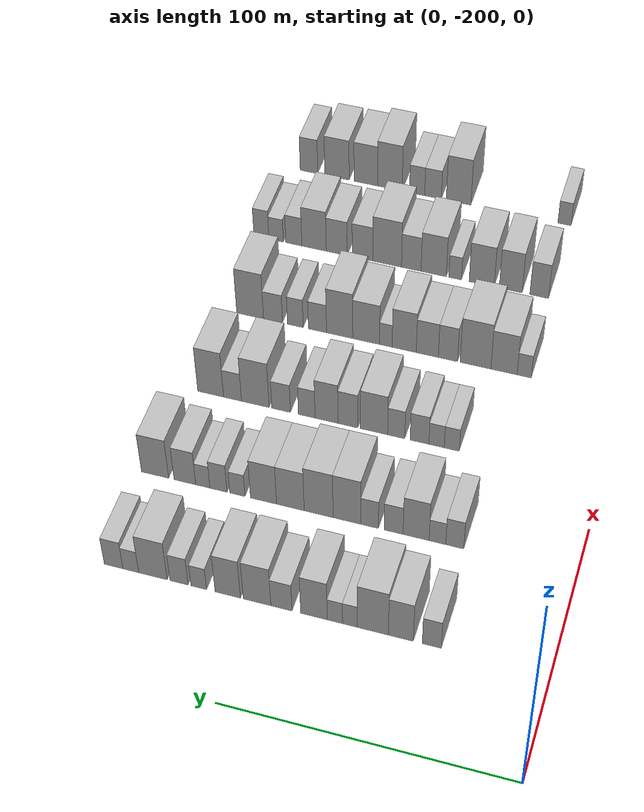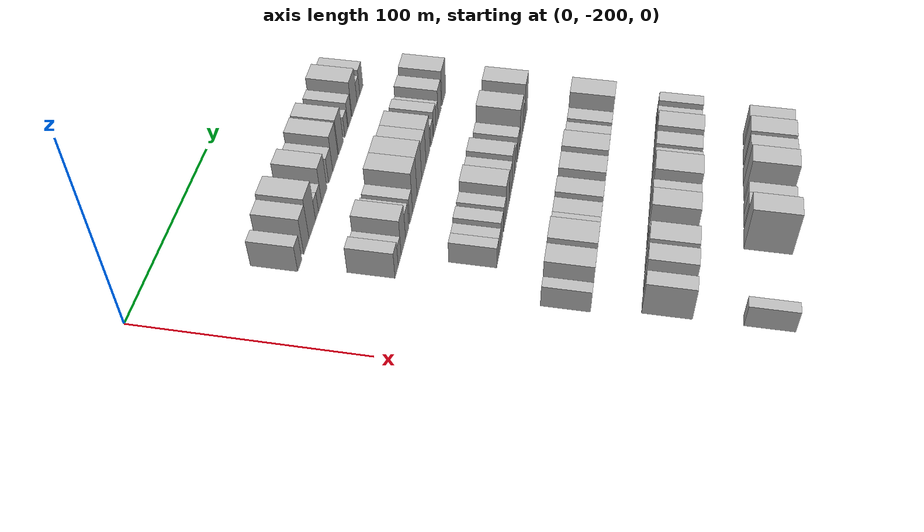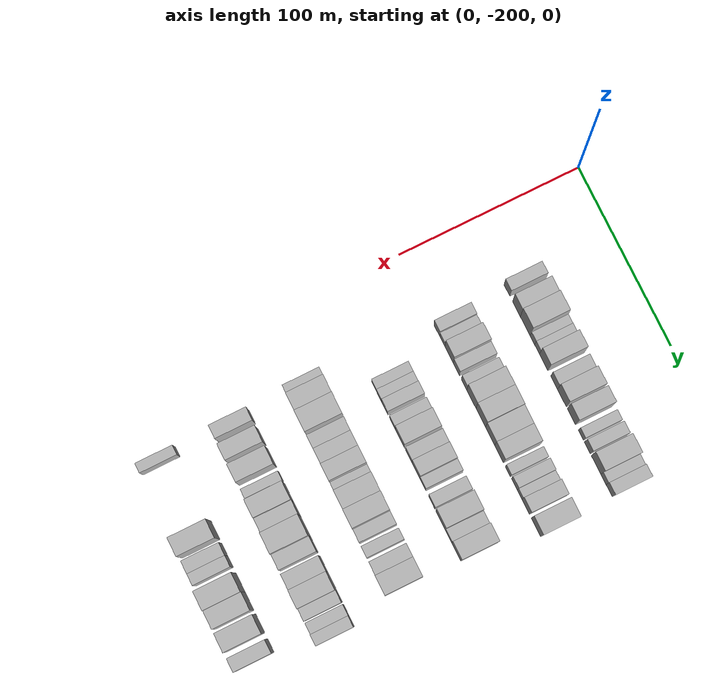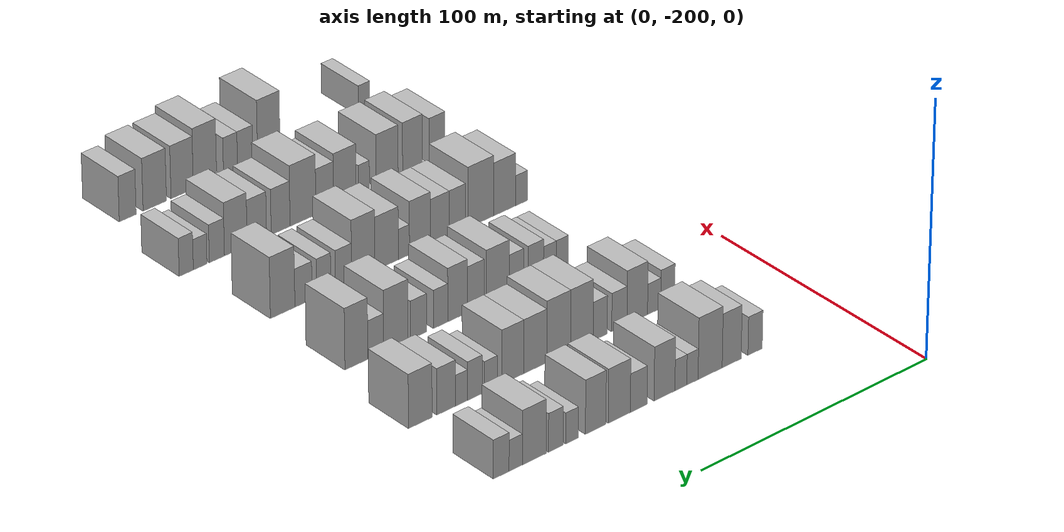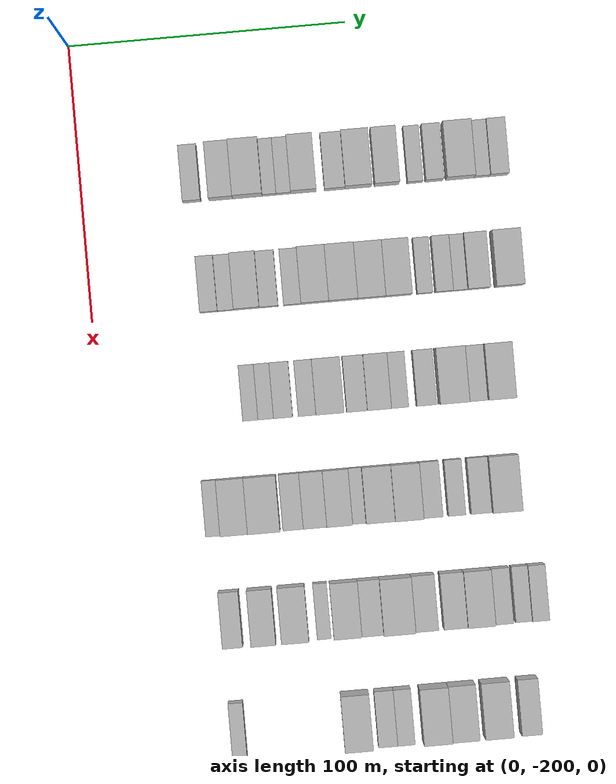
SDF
<sdf version="1.6">
 <world name="default">
  <model name="building_55">
   <static>1</static>
   <pose>50.0000 -160.3393 0 0.000000 0.000000 0.000000</pose>
   <link name="link">
    <pose>0 0 7.50 0 0 0</pose>
    <collision name="collision"><geometry><box><size>20.0000 6.4173 15.0000</size></box></geometry></collision>
    <visual name="visual">
     <cast_shadows>0</cast_shadows>
     <geometry><box><size>20.0000 6.4173 15.0000</size></box></geometry>
     <material>
      <script>
       <uri>model://HANNAS_wall/materials/scripts</uri>
       <uri>model://HANNAS_wall/materials/textures</uri>
       <name>vrc/HANNAS_wall</name>
      </script>
     </material>
    </visual>
   </link>
  </model>
  <model name="building_56">
   <static>1</static>
   <pose>50.0000 -149.9127 0 0.000000 0.000000 0.000000</pose>
   <link name="link">
    <pose>0 0 10.50 0 0 0</pose>
    <collision name="collision"><geometry><box><size>20.0000 8.4359 21.0000</size></box></geometry></collision>
    <visual name="visual">
     <cast_shadows>0</cast_shadows>
     <geometry><box><size>20.0000 8.4359 21.0000</size></box></geometry>
     <material>
      <script>
       <uri>model://HANNAS_wall/materials/scripts</uri>
       <uri>model://HANNAS_wall/materials/textures</uri>
       <name>vrc/HANNAS_wall</name>
      </script>
     </material>
    </visual>
   </link>
  </model>
  <model name="building_57">
   <static>1</static>
   <pose>50.0000 -140.3689 0 0.000000 0.000000 0.000000</pose>
   <link name="link">
    <pose>0 0 12.00 0 0 0</pose>
    <collision name="collision"><geometry><box><size>20.0000 10.6517 24.0000</size></box></geometry></collision>
    <visual name="visual">
     <cast_shadows>0</cast_shadows>
     <geometry><box><size>20.0000 10.6517 24.0000</size></box></geometry>
     <material>
      <script>
       <uri>model://HANNAS_wall/materials/scripts</uri>
       <uri>model://HANNAS_wall/materials/textures</uri>
       <name>vrc/HANNAS_wall</name>
      </script>
     </material>
    </visual>
   </link>
  </model>
  <model name="building_58">
   <static>1</static>
   <pose>50.0000 -132.5484 0 0.000000 0.000000 0.000000</pose>
   <link name="link">
    <pose>0 0 6.00 0 0 0</pose>
    <collision name="collision"><geometry><box><size>20.0000 4.9895 12.0000</size></box></geometry></collision>
    <visual name="visual">
     <cast_shadows>0</cast_shadows>
     <geometry><box><size>20.0000 4.9895 12.0000</size></box></geometry>
     <material>
      <script>
       <uri>model://HANNAS_wall/materials/scripts</uri>
       <uri>model://HANNAS_wall/materials/textures</uri>
       <name>vrc/HANNAS_wall</name>
      </script>
     </material>
    </visual>
   </link>
  </model>
  <model name="building_59">
   <static>1</static>
   <pose>50.0000 -127.4445 0 0.000000 0.000000 0.000000</pose>
   <link name="link">
    <pose>0 0 6.00 0 0 0</pose>
    <collision name="collision"><geometry><box><size>20.0000 5.2183 12.0000</size></box></geometry></collision>
    <visual name="visual">
     <cast_shadows>0</cast_shadows>
     <geometry><box><size>20.0000 5.2183 12.0000</size></box></geometry>
     <material>
      <script>
       <uri>model://HANNAS_wall/materials/scripts</uri>
       <uri>model://HANNAS_wall/materials/textures</uri>
       <name>vrc/HANNAS_wall</name>
      </script>
     </material>
    </visual>
   </link>
  </model>
  <model name="building_60">
   <static>1</static>
   <pose>50.0000 -120.2556 0 0.000000 0.000000 0.000000</pose>
   <link name="link">
    <pose>0 0 10.50 0 0 0</pose>
    <collision name="collision"><geometry><box><size>20.0000 9.1595 21.0000</size></box></geometry></collision>
    <visual name="visual">
     <cast_shadows>0</cast_shadows>
     <geometry><box><size>20.0000 9.1595 21.0000</size></box></geometry>
     <material>
      <script>
       <uri>model://HANNAS_wall/materials/scripts</uri>
       <uri>model://HANNAS_wall/materials/textures</uri>
       <name>vrc/HANNAS_wall</name>
      </script>
     </material>
    </visual>
   </link>
  </model>
  <model name="building_61">
   <static>1</static>
   <pose>50.0000 -109.0073 0 0.000000 0.000000 0.000000</pose>
   <link name="link">
    <pose>0 0 7.50 0 0 0</pose>
    <collision name="collision"><geometry><box><size>20.0000 7.3371 15.0000</size></box></geometry></collision>
    <visual name="visual">
     <cast_shadows>0</cast_shadows>
     <geometry><box><size>20.0000 7.3371 15.0000</size></box></geometry>
     <material>
      <script>
       <uri>model://HANNAS_wall/materials/scripts</uri>
       <uri>model://HANNAS_wall/materials/textures</uri>
       <name>vrc/HANNAS_wall</name>
      </script>
     </material>
    </visual>
   </link>
  </model>
  <model name="building_62">
   <static>1</static>
   <pose>50.0000 -100.5350 0 0.000000 0.000000 0.000000</pose>
   <link name="link">
    <pose>0 0 10.50 0 0 0</pose>
    <collision name="collision"><geometry><box><size>20.0000 9.6074 21.0000</size></box></geometry></collision>
    <visual name="visual">
     <cast_shadows>0</cast_shadows>
     <geometry><box><size>20.0000 9.6074 21.0000</size></box></geometry>
     <material>
      <script>
       <uri>model://HANNAS_wall/materials/scripts</uri>
       <uri>model://HANNAS_wall/materials/textures</uri>
       <name>vrc/HANNAS_wall</name>
      </script>
     </material>
    </visual>
   </link>
  </model>
  <model name="building_63">
   <static>1</static>
   <pose>50.0000 -90.2976 0 0.000000 0.000000 0.000000</pose>
   <link name="link">
    <pose>0 0 10.50 0 0 0</pose>
    <collision name="collision"><geometry><box><size>20.0000 8.8675 21.0000</size></box></geometry></collision>
    <visual name="visual">
     <cast_shadows>0</cast_shadows>
     <geometry><box><size>20.0000 8.8675 21.0000</size></box></geometry>
     <material>
      <script>
       <uri>model://HANNAS_wall/materials/scripts</uri>
       <uri>model://HANNAS_wall/materials/textures</uri>
       <name>vrc/HANNAS_wall</name>
      </script>
     </material>
    </visual>
   </link>
  </model>
  <model name="building_64">
   <static>1</static>
   <pose>50.0000 -80.1124 0 0.000000 0.000000 0.000000</pose>
   <link name="link">
    <pose>0 0 6.00 0 0 0</pose>
    <collision name="collision"><geometry><box><size>20.0000 5.5029 12.0000</size></box></geometry></collision>
    <visual name="visual">
     <cast_shadows>0</cast_shadows>
     <geometry><box><size>20.0000 5.5029 12.0000</size></box></geometry>
     <material>
      <script>
       <uri>model://HANNAS_wall/materials/scripts</uri>
       <uri>model://HANNAS_wall/materials/textures</uri>
       <name>vrc/HANNAS_wall</name>
      </script>
     </material>
    </visual>
   </link>
  </model>
  <model name="building_65">
   <static>1</static>
   <pose>50.0000 -73.1707 0 0.000000 0.000000 0.000000</pose>
   <link name="link">
    <pose>0 0 7.50 0 0 0</pose>
    <collision name="collision"><geometry><box><size>20.0000 6.3804 15.0000</size></box></geometry></collision>
    <visual name="visual">
     <cast_shadows>0</cast_shadows>
     <geometry><box><size>20.0000 6.3804 15.0000</size></box></geometry>
     <material>
      <script>
       <uri>model://HANNAS_wall/materials/scripts</uri>
       <uri>model://HANNAS_wall/materials/textures</uri>
       <name>vrc/HANNAS_wall</name>
      </script>
     </material>
    </visual>
   </link>
  </model>
  <model name="building_66">
   <static>1</static>
   <pose>50.0000 -63.8979 0 0.000000 0.000000 0.000000</pose>
   <link name="link">
    <pose>0 0 10.50 0 0 0</pose>
    <collision name="collision"><geometry><box><size>20.0000 10.1652 21.0000</size></box></geometry></collision>
    <visual name="visual">
     <cast_shadows>0</cast_shadows>
     <geometry><box><size>20.0000 10.1652 21.0000</size></box></geometry>
     <material>
      <script>
       <uri>model://HANNAS_wall/materials/scripts</uri>
       <uri>model://HANNAS_wall/materials/textures</uri>
       <name>vrc/HANNAS_wall</name>
      </script>
     </material>
    </visual>
   </link>
  </model>
  <model name="building_67">
   <static>1</static>
   <pose>50.0000 -55.9959 0 0.000000 0.000000 0.000000</pose>
   <link name="link">
    <pose>0 0 6.00 0 0 0</pose>
    <collision name="collision"><geometry><box><size>20.0000 5.6389 12.0000</size></box></geometry></collision>
    <visual name="visual">
     <cast_shadows>0</cast_shadows>
     <geometry><box><size>20.0000 5.6389 12.0000</size></box></geometry>
     <material>
      <script>
       <uri>model://HANNAS_wall/materials/scripts</uri>
       <uri>model://HANNAS_wall/materials/textures</uri>
       <name>vrc/HANNAS_wall</name>
      </script>
     </material>
    </visual>
   </link>
  </model>
  <model name="building_68">
   <static>1</static>
   <pose>50.0000 -49.8510 0 0.000000 0.000000 0.000000</pose>
   <link name="link">
    <pose>0 0 7.50 0 0 0</pose>
    <collision name="collision"><geometry><box><size>20.0000 6.6507 15.0000</size></box></geometry></collision>
    <visual name="visual">
     <cast_shadows>0</cast_shadows>
     <geometry><box><size>20.0000 6.6507 15.0000</size></box></geometry>
     <material>
      <script>
       <uri>model://HANNAS_wall/materials/scripts</uri>
       <uri>model://HANNAS_wall/materials/textures</uri>
       <name>vrc/HANNAS_wall</name>
      </script>
     </material>
    </visual>
   </link>
  </model>
  <model name="building_194">
   <static>1</static>
   <pose>90.0000 -157.6678 0 0.000000 0.000000 0.000000</pose>
   <link name="link">
    <pose>0 0 7.50 0 0 0</pose>
    <collision name="collision"><geometry><box><size>20.0000 6.2964 15.0000</size></box></geometry></collision>
    <visual name="visual">
     <cast_shadows>0</cast_shadows>
     <geometry><box><size>20.0000 6.2964 15.0000</size></box></geometry>
     <material>
      <script>
       <uri>model://HANNAS_wall/materials/scripts</uri>
       <uri>model://HANNAS_wall/materials/textures</uri>
       <name>vrc/HANNAS_wall</name>
      </script>
     </material>
    </visual>
   </link>
  </model>
  <model name="building_195">
   <static>1</static>
   <pose>90.0000 -151.5935 0 0.000000 0.000000 0.000000</pose>
   <link name="link">
    <pose>0 0 6.00 0 0 0</pose>
    <collision name="collision"><geometry><box><size>20.0000 5.8522 12.0000</size></box></geometry></collision>
    <visual name="visual">
     <cast_shadows>0</cast_shadows>
     <geometry><box><size>20.0000 5.8522 12.0000</size></box></geometry>
     <material>
      <script>
       <uri>model://HANNAS_wall/materials/scripts</uri>
       <uri>model://HANNAS_wall/materials/textures</uri>
       <name>vrc/HANNAS_wall</name>
      </script>
     </material>
    </visual>
   </link>
  </model>
  <model name="building_196">
   <static>1</static>
   <pose>90.0000 -144.0897 0 0.000000 0.000000 0.000000</pose>
   <link name="link">
    <pose>0 0 10.50 0 0 0</pose>
    <collision name="collision"><geometry><box><size>20.0000 9.1555 21.0000</size></box></geometry></collision>
    <visual name="visual">
     <cast_shadows>0</cast_shadows>
     <geometry><box><size>20.0000 9.1555 21.0000</size></box></geometry>
     <material>
      <script>
       <uri>model://HANNAS_wall/materials/scripts</uri>
       <uri>model://HANNAS_wall/materials/textures</uri>
       <name>vrc/HANNAS_wall</name>
      </script>
     </material>
    </visual>
   </link>
  </model>
  <model name="building_197">
   <static>1</static>
   <pose>90.0000 -136.1538 0 0.000000 0.000000 0.000000</pose>
   <link name="link">
    <pose>0 0 7.50 0 0 0</pose>
    <collision name="collision"><geometry><box><size>20.0000 6.7163 15.0000</size></box></geometry></collision>
    <visual name="visual">
     <cast_shadows>0</cast_shadows>
     <geometry><box><size>20.0000 6.7163 15.0000</size></box></geometry>
     <material>
      <script>
       <uri>model://HANNAS_wall/materials/scripts</uri>
       <uri>model://HANNAS_wall/materials/textures</uri>
       <name>vrc/HANNAS_wall</name>
      </script>
     </material>
    </visual>
   </link>
  </model>
  <model name="building_198">
   <static>1</static>
   <pose>90.0000 -127.6882 0 0.000000 0.000000 0.000000</pose>
   <link name="link">
    <pose>0 0 7.50 0 0 0</pose>
    <collision name="collision"><geometry><box><size>20.0000 6.2150 15.0000</size></box></geometry></collision>
    <visual name="visual">
     <cast_shadows>0</cast_shadows>
     <geometry><box><size>20.0000 6.2150 15.0000</size></box></geometry>
     <material>
      <script>
       <uri>model://HANNAS_wall/materials/scripts</uri>
       <uri>model://HANNAS_wall/materials/textures</uri>
       <name>vrc/HANNAS_wall</name>
      </script>
     </material>
    </visual>
   </link>
  </model>
  <model name="building_199">
   <static>1</static>
   <pose>90.0000 -119.6330 0 0.000000 0.000000 0.000000</pose>
   <link name="link">
    <pose>0 0 12.00 0 0 0</pose>
    <collision name="collision"><geometry><box><size>20.0000 9.8953 24.0000</size></box></geometry></collision>
    <visual name="visual">
     <cast_shadows>0</cast_shadows>
     <geometry><box><size>20.0000 9.8953 24.0000</size></box></geometry>
     <material>
      <script>
       <uri>model://HANNAS_wall/materials/scripts</uri>
       <uri>model://HANNAS_wall/materials/textures</uri>
       <name>vrc/HANNAS_wall</name>
      </script>
     </material>
    </visual>
   </link>
  </model>
  <model name="building_200">
   <static>1</static>
   <pose>90.0000 -109.4890 0 0.000000 0.000000 0.000000</pose>
   <link name="link">
    <pose>0 0 12.00 0 0 0</pose>
    <collision name="collision"><geometry><box><size>20.0000 10.3929 24.0000</size></box></geometry></collision>
    <visual name="visual">
     <cast_shadows>0</cast_shadows>
     <geometry><box><size>20.0000 10.3929 24.0000</size></box></geometry>
     <material>
      <script>
       <uri>model://HANNAS_wall/materials/scripts</uri>
       <uri>model://HANNAS_wall/materials/textures</uri>
       <name>vrc/HANNAS_wall</name>
      </script>
     </material>
    </visual>
   </link>
  </model>
  <model name="building_201">
   <static>1</static>
   <pose>90.0000 -99.2939 0 0.000000 0.000000 0.000000</pose>
   <link name="link">
    <pose>0 0 10.50 0 0 0</pose>
    <collision name="collision"><geometry><box><size>20.0000 9.9974 21.0000</size></box></geometry></collision>
    <visual name="visual">
     <cast_shadows>0</cast_shadows>
     <geometry><box><size>20.0000 9.9974 21.0000</size></box></geometry>
     <material>
      <script>
       <uri>model://HANNAS_wall/materials/scripts</uri>
       <uri>model://HANNAS_wall/materials/textures</uri>
       <name>vrc/HANNAS_wall</name>
      </script>
     </material>
    </visual>
   </link>
  </model>
  <model name="building_202">
   <static>1</static>
   <pose>90.0000 -89.5693 0 0.000000 0.000000 0.000000</pose>
   <link name="link">
    <pose>0 0 10.50 0 0 0</pose>
    <collision name="collision"><geometry><box><size>20.0000 9.4518 21.0000</size></box></geometry></collision>
    <visual name="visual">
     <cast_shadows>0</cast_shadows>
     <geometry><box><size>20.0000 9.4518 21.0000</size></box></geometry>
     <material>
      <script>
       <uri>model://HANNAS_wall/materials/scripts</uri>
       <uri>model://HANNAS_wall/materials/textures</uri>
       <name>vrc/HANNAS_wall</name>
      </script>
     </material>
    </visual>
   </link>
  </model>
  <model name="building_203">
   <static>1</static>
   <pose>90.0000 -80.0685 0 0.000000 0.000000 0.000000</pose>
   <link name="link">
    <pose>0 0 6.00 0 0 0</pose>
    <collision name="collision"><geometry><box><size>20.0000 5.5498 12.0000</size></box></geometry></collision>
    <visual name="visual">
     <cast_shadows>0</cast_shadows>
     <geometry><box><size>20.0000 5.5498 12.0000</size></box></geometry>
     <material>
      <script>
       <uri>model://HANNAS_wall/materials/scripts</uri>
       <uri>model://HANNAS_wall/materials/textures</uri>
       <name>vrc/HANNAS_wall</name>
      </script>
     </material>
    </visual>
   </link>
  </model>
  <model name="building_204">
   <static>1</static>
   <pose>90.0000 -73.1542 0 0.000000 0.000000 0.000000</pose>
   <link name="link">
    <pose>0 0 7.50 0 0 0</pose>
    <collision name="collision"><geometry><box><size>20.0000 6.2788 15.0000</size></box></geometry></collision>
    <visual name="visual">
     <cast_shadows>0</cast_shadows>
     <geometry><box><size>20.0000 6.2788 15.0000</size></box></geometry>
     <material>
      <script>
       <uri>model://HANNAS_wall/materials/scripts</uri>
       <uri>model://HANNAS_wall/materials/textures</uri>
       <name>vrc/HANNAS_wall</name>
      </script>
     </material>
    </visual>
   </link>
  </model>
  <model name="building_205">
   <static>1</static>
   <pose>90.0000 -67.4105 0 0.000000 0.000000 0.000000</pose>
   <link name="link">
    <pose>0 0 6.00 0 0 0</pose>
    <collision name="collision"><geometry><box><size>20.0000 5.2084 12.0000</size></box></geometry></collision>
    <visual name="visual">
     <cast_shadows>0</cast_shadows>
     <geometry><box><size>20.0000 5.2084 12.0000</size></box></geometry>
     <material>
      <script>
       <uri>model://HANNAS_wall/materials/scripts</uri>
       <uri>model://HANNAS_wall/materials/textures</uri>
       <name>vrc/HANNAS_wall</name>
      </script>
     </material>
    </visual>
   </link>
  </model>
  <model name="building_206">
   <static>1</static>
   <pose>90.0000 -60.8112 0 0.000000 0.000000 0.000000</pose>
   <link name="link">
    <pose>0 0 9.00 0 0 0</pose>
    <collision name="collision"><geometry><box><size>20.0000 7.9901 18.0000</size></box></geometry></collision>
    <visual name="visual">
     <cast_shadows>0</cast_shadows>
     <geometry><box><size>20.0000 7.9901 18.0000</size></box></geometry>
     <material>
      <script>
       <uri>model://HANNAS_wall/materials/scripts</uri>
       <uri>model://HANNAS_wall/materials/textures</uri>
       <name>vrc/HANNAS_wall</name>
      </script>
     </material>
    </visual>
   </link>
  </model>
  <model name="building_207">
   <static>1</static>
   <pose>90.0000 -49.7831 0 0.000000 0.000000 0.000000</pose>
   <link name="link">
    <pose>0 0 10.50 0 0 0</pose>
    <collision name="collision"><geometry><box><size>20.0000 10.0661 21.0000</size></box></geometry></collision>
    <visual name="visual">
     <cast_shadows>0</cast_shadows>
     <geometry><box><size>20.0000 10.0661 21.0000</size></box></geometry>
     <material>
      <script>
       <uri>model://HANNAS_wall/materials/scripts</uri>
       <uri>model://HANNAS_wall/materials/textures</uri>
       <name>vrc/HANNAS_wall</name>
      </script>
     </material>
    </visual>
   </link>
  </model>
  <model name="building_328">
   <static>1</static>
   <pose>130.0000 -146.1766 0 0.000000 0.000000 0.000000</pose>
   <link name="link">
    <pose>0 0 6.00 0 0 0</pose>
    <collision name="collision"><geometry><box><size>20.0000 5.4695 12.0000</size></box></geometry></collision>
    <visual name="visual">
     <cast_shadows>0</cast_shadows>
     <geometry><box><size>20.0000 5.4695 12.0000</size></box></geometry>
     <material>
      <script>
       <uri>model://HANNAS_wall/materials/scripts</uri>
       <uri>model://HANNAS_wall/materials/textures</uri>
       <name>vrc/HANNAS_wall</name>
      </script>
     </material>
    </visual>
   </link>
  </model>
  <model name="building_329">
   <static>1</static>
   <pose>130.0000 -140.6397 0 0.000000 0.000000 0.000000</pose>
   <link name="link">
    <pose>0 0 6.00 0 0 0</pose>
    <collision name="collision"><geometry><box><size>20.0000 5.6043 12.0000</size></box></geometry></collision>
    <visual name="visual">
     <cast_shadows>0</cast_shadows>
     <geometry><box><size>20.0000 5.6043 12.0000</size></box></geometry>
     <material>
      <script>
       <uri>model://HANNAS_wall/materials/scripts</uri>
       <uri>model://HANNAS_wall/materials/textures</uri>
       <name>vrc/HANNAS_wall</name>
      </script>
     </material>
    </visual>
   </link>
  </model>
  <model name="building_330">
   <static>1</static>
   <pose>130.0000 -134.4156 0 0.000000 0.000000 0.000000</pose>
   <link name="link">
    <pose>0 0 7.50 0 0 0</pose>
    <collision name="collision"><geometry><box><size>20.0000 6.8438 15.0000</size></box></geometry></collision>
    <visual name="visual">
     <cast_shadows>0</cast_shadows>
     <geometry><box><size>20.0000 6.8438 15.0000</size></box></geometry>
     <material>
      <script>
       <uri>model://HANNAS_wall/materials/scripts</uri>
       <uri>model://HANNAS_wall/materials/textures</uri>
       <name>vrc/HANNAS_wall</name>
      </script>
     </material>
    </visual>
   </link>
  </model>
  <model name="building_331">
   <static>1</static>
   <pose>130.0000 -125.8391 0 0.000000 0.000000 0.000000</pose>
   <link name="link">
    <pose>0 0 7.50 0 0 0</pose>
    <collision name="collision"><geometry><box><size>20.0000 6.3091 15.0000</size></box></geometry></collision>
    <visual name="visual">
     <cast_shadows>0</cast_shadows>
     <geometry><box><size>20.0000 6.3091 15.0000</size></box></geometry>
     <material>
      <script>
       <uri>model://HANNAS_wall/materials/scripts</uri>
       <uri>model://HANNAS_wall/materials/textures</uri>
       <name>vrc/HANNAS_wall</name>
      </script>
     </material>
    </visual>
   </link>
  </model>
  <model name="building_332">
   <static>1</static>
   <pose>130.0000 -117.6732 0 0.000000 0.000000 0.000000</pose>
   <link name="link">
    <pose>0 0 10.50 0 0 0</pose>
    <collision name="collision"><geometry><box><size>20.0000 10.0227 21.0000</size></box></geometry></collision>
    <visual name="visual">
     <cast_shadows>0</cast_shadows>
     <geometry><box><size>20.0000 10.0227 21.0000</size></box></geometry>
     <material>
      <script>
       <uri>model://HANNAS_wall/materials/scripts</uri>
       <uri>model://HANNAS_wall/materials/textures</uri>
       <name>vrc/HANNAS_wall</name>
      </script>
     </material>
    </visual>
   </link>
  </model>
  <model name="building_333">
   <static>1</static>
   <pose>130.0000 -108.0036 0 0.000000 0.000000 0.000000</pose>
   <link name="link">
    <pose>0 0 9.00 0 0 0</pose>
    <collision name="collision"><geometry><box><size>20.0000 7.3164 18.0000</size></box></geometry></collision>
    <visual name="visual">
     <cast_shadows>0</cast_shadows>
     <geometry><box><size>20.0000 7.3164 18.0000</size></box></geometry>
     <material>
      <script>
       <uri>model://HANNAS_wall/materials/scripts</uri>
       <uri>model://HANNAS_wall/materials/textures</uri>
       <name>vrc/HANNAS_wall</name>
      </script>
     </material>
    </visual>
   </link>
  </model>
  <model name="building_334">
   <static>1</static>
   <pose>130.0000 -100.0509 0 0.000000 0.000000 0.000000</pose>
   <link name="link">
    <pose>0 0 10.50 0 0 0</pose>
    <collision name="collision"><geometry><box><size>20.0000 8.5891 21.0000</size></box></geometry></collision>
    <visual name="visual">
     <cast_shadows>0</cast_shadows>
     <geometry><box><size>20.0000 8.5891 21.0000</size></box></geometry>
     <material>
      <script>
       <uri>model://HANNAS_wall/materials/scripts</uri>
       <uri>model://HANNAS_wall/materials/textures</uri>
       <name>vrc/HANNAS_wall</name>
      </script>
     </material>
    </visual>
   </link>
  </model>
  <model name="building_335">
   <static>1</static>
   <pose>130.0000 -92.6324 0 0.000000 0.000000 0.000000</pose>
   <link name="link">
    <pose>0 0 7.50 0 0 0</pose>
    <collision name="collision"><geometry><box><size>20.0000 6.2480 15.0000</size></box></geometry></collision>
    <visual name="visual">
     <cast_shadows>0</cast_shadows>
     <geometry><box><size>20.0000 6.2480 15.0000</size></box></geometry>
     <material>
      <script>
       <uri>model://HANNAS_wall/materials/scripts</uri>
       <uri>model://HANNAS_wall/materials/textures</uri>
       <name>vrc/HANNAS_wall</name>
      </script>
     </material>
    </visual>
   </link>
  </model>
  <model name="building_336">
   <static>1</static>
   <pose>130.0000 -83.0033 0 0.000000 0.000000 0.000000</pose>
   <link name="link">
    <pose>0 0 7.50 0 0 0</pose>
    <collision name="collision"><geometry><box><size>20.0000 7.0102 15.0000</size></box></geometry></collision>
    <visual name="visual">
     <cast_shadows>0</cast_shadows>
     <geometry><box><size>20.0000 7.0102 15.0000</size></box></geometry>
     <material>
      <script>
       <uri>model://HANNAS_wall/materials/scripts</uri>
       <uri>model://HANNAS_wall/materials/textures</uri>
       <name>vrc/HANNAS_wall</name>
      </script>
     </material>
    </visual>
   </link>
  </model>
  <model name="building_337">
   <static>1</static>
   <pose>130.0000 -73.2473 0 0.000000 0.000000 0.000000</pose>
   <link name="link">
    <pose>0 0 12.00 0 0 0</pose>
    <collision name="collision"><geometry><box><size>20.0000 10.5017 24.0000</size></box></geometry></collision>
    <visual name="visual">
     <cast_shadows>0</cast_shadows>
     <geometry><box><size>20.0000 10.5017 24.0000</size></box></geometry>
     <material>
      <script>
       <uri>model://HANNAS_wall/materials/scripts</uri>
       <uri>model://HANNAS_wall/materials/textures</uri>
       <name>vrc/HANNAS_wall</name>
      </script>
     </material>
    </visual>
   </link>
  </model>
  <model name="building_338">
   <static>1</static>
   <pose>130.0000 -64.5908 0 0.000000 0.000000 0.000000</pose>
   <link name="link">
    <pose>0 0 7.50 0 0 0</pose>
    <collision name="collision"><geometry><box><size>20.0000 6.8115 15.0000</size></box></geometry></collision>
    <visual name="visual">
     <cast_shadows>0</cast_shadows>
     <geometry><box><size>20.0000 6.8115 15.0000</size></box></geometry>
     <material>
      <script>
       <uri>model://HANNAS_wall/materials/scripts</uri>
       <uri>model://HANNAS_wall/materials/textures</uri>
       <name>vrc/HANNAS_wall</name>
      </script>
     </material>
    </visual>
   </link>
  </model>
  <model name="building_339">
   <static>1</static>
   <pose>130.0000 -56.2738 0 0.000000 0.000000 0.000000</pose>
   <link name="link">
    <pose>0 0 12.00 0 0 0</pose>
    <collision name="collision"><geometry><box><size>20.0000 9.8225 24.0000</size></box></geometry></collision>
    <visual name="visual">
     <cast_shadows>0</cast_shadows>
     <geometry><box><size>20.0000 9.8225 24.0000</size></box></geometry>
     <material>
      <script>
       <uri>model://HANNAS_wall/materials/scripts</uri>
       <uri>model://HANNAS_wall/materials/textures</uri>
       <name>vrc/HANNAS_wall</name>
      </script>
     </material>
    </visual>
   </link>
  </model>
  <model name="building_459">
   <static>1</static>
   <pose>170.0000 -162.9685 0 0.000000 0.000000 0.000000</pose>
   <link name="link">
    <pose>0 0 6.00 0 0 0</pose>
    <collision name="collision"><geometry><box><size>20.0000 5.3256 12.0000</size></box></geometry></collision>
    <visual name="visual">
     <cast_shadows>0</cast_shadows>
     <geometry><box><size>20.0000 5.3256 12.0000</size></box></geometry>
     <material>
      <script>
       <uri>model://HANNAS_wall/materials/scripts</uri>
       <uri>model://HANNAS_wall/materials/textures</uri>
       <name>vrc/HANNAS_wall</name>
      </script>
     </material>
    </visual>
   </link>
  </model>
  <model name="building_460">
   <static>1</static>
   <pose>170.0000 -155.3904 0 0.000000 0.000000 0.000000</pose>
   <link name="link">
    <pose>0 0 10.50 0 0 0</pose>
    <collision name="collision"><geometry><box><size>20.0000 9.8306 21.0000</size></box></geometry></collision>
    <visual name="visual">
     <cast_shadows>0</cast_shadows>
     <geometry><box><size>20.0000 9.8306 21.0000</size></box></geometry>
     <material>
      <script>
       <uri>model://HANNAS_wall/materials/scripts</uri>
       <uri>model://HANNAS_wall/materials/textures</uri>
       <name>vrc/HANNAS_wall</name>
      </script>
     </material>
    </visual>
   </link>
  </model>
  <model name="building_461">
   <static>1</static>
   <pose>170.0000 -144.6985 0 0.000000 0.000000 0.000000</pose>
   <link name="link">
    <pose>0 0 12.00 0 0 0</pose>
    <collision name="collision"><geometry><box><size>20.0000 11.5532 24.0000</size></box></geometry></collision>
    <visual name="visual">
     <cast_shadows>0</cast_shadows>
     <geometry><box><size>20.0000 11.5532 24.0000</size></box></geometry>
     <material>
      <script>
       <uri>model://HANNAS_wall/materials/scripts</uri>
       <uri>model://HANNAS_wall/materials/textures</uri>
       <name>vrc/HANNAS_wall</name>
      </script>
     </material>
    </visual>
   </link>
  </model>
  <model name="building_462">
   <static>1</static>
   <pose>170.0000 -134.2907 0 0.000000 0.000000 0.000000</pose>
   <link name="link">
    <pose>0 0 9.00 0 0 0</pose>
    <collision name="collision"><geometry><box><size>20.0000 7.2623 18.0000</size></box></geometry></collision>
    <visual name="visual">
     <cast_shadows>0</cast_shadows>
     <geometry><box><size>20.0000 7.2623 18.0000</size></box></geometry>
     <material>
      <script>
       <uri>model://HANNAS_wall/materials/scripts</uri>
       <uri>model://HANNAS_wall/materials/textures</uri>
       <name>vrc/HANNAS_wall</name>
      </script>
     </material>
    </visual>
   </link>
  </model>
  <model name="building_463">
   <static>1</static>
   <pose>170.0000 -126.4711 0 0.000000 0.000000 0.000000</pose>
   <link name="link">
    <pose>0 0 9.00 0 0 0</pose>
    <collision name="collision"><geometry><box><size>20.0000 8.3770 18.0000</size></box></geometry></collision>
    <visual name="visual">
     <cast_shadows>0</cast_shadows>
     <geometry><box><size>20.0000 8.3770 18.0000</size></box></geometry>
     <material>
      <script>
       <uri>model://HANNAS_wall/materials/scripts</uri>
       <uri>model://HANNAS_wall/materials/textures</uri>
       <name>vrc/HANNAS_wall</name>
      </script>
     </material>
    </visual>
   </link>
  </model>
  <model name="building_464">
   <static>1</static>
   <pose>170.0000 -117.6715 0 0.000000 0.000000 0.000000</pose>
   <link name="link">
    <pose>0 0 10.50 0 0 0</pose>
    <collision name="collision"><geometry><box><size>20.0000 9.2223 21.0000</size></box></geometry></collision>
    <visual name="visual">
     <cast_shadows>0</cast_shadows>
     <geometry><box><size>20.0000 9.2223 21.0000</size></box></geometry>
     <material>
      <script>
       <uri>model://HANNAS_wall/materials/scripts</uri>
       <uri>model://HANNAS_wall/materials/textures</uri>
       <name>vrc/HANNAS_wall</name>
      </script>
     </material>
    </visual>
   </link>
  </model>
  <model name="building_465">
   <static>1</static>
   <pose>170.0000 -110.6391 0 0.000000 0.000000 0.000000</pose>
   <link name="link">
    <pose>0 0 6.00 0 0 0</pose>
    <collision name="collision"><geometry><box><size>20.0000 4.8424 12.0000</size></box></geometry></collision>
    <visual name="visual">
     <cast_shadows>0</cast_shadows>
     <geometry><box><size>20.0000 4.8424 12.0000</size></box></geometry>
     <material>
      <script>
       <uri>model://HANNAS_wall/materials/scripts</uri>
       <uri>model://HANNAS_wall/materials/textures</uri>
       <name>vrc/HANNAS_wall</name>
      </script>
     </material>
    </visual>
   </link>
  </model>
  <model name="building_466">
   <static>1</static>
   <pose>170.0000 -103.0587 0 0.000000 0.000000 0.000000</pose>
   <link name="link">
    <pose>0 0 10.50 0 0 0</pose>
    <collision name="collision"><geometry><box><size>20.0000 10.3184 21.0000</size></box></geometry></collision>
    <visual name="visual">
     <cast_shadows>0</cast_shadows>
     <geometry><box><size>20.0000 10.3184 21.0000</size></box></geometry>
     <material>
      <script>
       <uri>model://HANNAS_wall/materials/scripts</uri>
       <uri>model://HANNAS_wall/materials/textures</uri>
       <name>vrc/HANNAS_wall</name>
      </script>
     </material>
    </visual>
   </link>
  </model>
  <model name="building_467">
   <static>1</static>
   <pose>170.0000 -92.8172 0 0.000000 0.000000 0.000000</pose>
   <link name="link">
    <pose>0 0 12.00 0 0 0</pose>
    <collision name="collision"><geometry><box><size>20.0000 10.1645 24.0000</size></box></geometry></collision>
    <visual name="visual">
     <cast_shadows>0</cast_shadows>
     <geometry><box><size>20.0000 10.1645 24.0000</size></box></geometry>
     <material>
      <script>
       <uri>model://HANNAS_wall/materials/scripts</uri>
       <uri>model://HANNAS_wall/materials/textures</uri>
       <name>vrc/HANNAS_wall</name>
      </script>
     </material>
    </visual>
   </link>
  </model>
  <model name="building_468">
   <static>1</static>
   <pose>170.0000 -84.2109 0 0.000000 0.000000 0.000000</pose>
   <link name="link">
    <pose>0 0 7.50 0 0 0</pose>
    <collision name="collision"><geometry><box><size>20.0000 7.0480 15.0000</size></box></geometry></collision>
    <visual name="visual">
     <cast_shadows>0</cast_shadows>
     <geometry><box><size>20.0000 7.0480 15.0000</size></box></geometry>
     <material>
      <script>
       <uri>model://HANNAS_wall/materials/scripts</uri>
       <uri>model://HANNAS_wall/materials/textures</uri>
       <name>vrc/HANNAS_wall</name>
      </script>
     </material>
    </visual>
   </link>
  </model>
  <model name="building_469">
   <static>1</static>
   <pose>170.0000 -75.6225 0 0.000000 0.000000 0.000000</pose>
   <link name="link">
    <pose>0 0 7.50 0 0 0</pose>
    <collision name="collision"><geometry><box><size>20.0000 6.1286 15.0000</size></box></geometry></collision>
    <visual name="visual">
     <cast_shadows>0</cast_shadows>
     <geometry><box><size>20.0000 6.1286 15.0000</size></box></geometry>
     <material>
      <script>
       <uri>model://HANNAS_wall/materials/scripts</uri>
       <uri>model://HANNAS_wall/materials/textures</uri>
       <name>vrc/HANNAS_wall</name>
      </script>
     </material>
    </visual>
   </link>
  </model>
  <model name="building_470">
   <static>1</static>
   <pose>170.0000 -66.8559 0 0.000000 0.000000 0.000000</pose>
   <link name="link">
    <pose>0 0 7.50 0 0 0</pose>
    <collision name="collision"><geometry><box><size>20.0000 7.4047 15.0000</size></box></geometry></collision>
    <visual name="visual">
     <cast_shadows>0</cast_shadows>
     <geometry><box><size>20.0000 7.4047 15.0000</size></box></geometry>
     <material>
      <script>
       <uri>model://HANNAS_wall/materials/scripts</uri>
       <uri>model://HANNAS_wall/materials/textures</uri>
       <name>vrc/HANNAS_wall</name>
      </script>
     </material>
    </visual>
   </link>
  </model>
  <model name="building_471">
   <static>1</static>
   <pose>170.0000 -57.8774 0 0.000000 0.000000 0.000000</pose>
   <link name="link">
    <pose>0 0 12.00 0 0 0</pose>
    <collision name="collision"><geometry><box><size>20.0000 10.5522 24.0000</size></box></geometry></collision>
    <visual name="visual">
     <cast_shadows>0</cast_shadows>
     <geometry><box><size>20.0000 10.5522 24.0000</size></box></geometry>
     <material>
      <script>
       <uri>model://HANNAS_wall/materials/scripts</uri>
       <uri>model://HANNAS_wall/materials/textures</uri>
       <name>vrc/HANNAS_wall</name>
      </script>
     </material>
    </visual>
   </link>
  </model>
  <model name="building_602">
   <static>1</static>
   <pose>210.0000 -159.3896 0 0.000000 0.000000 0.000000</pose>
   <link name="link">
    <pose>0 0 9.00 0 0 0</pose>
    <collision name="collision"><geometry><box><size>20.0000 7.2347 18.0000</size></box></geometry></collision>
    <visual name="visual">
     <cast_shadows>0</cast_shadows>
     <geometry><box><size>20.0000 7.2347 18.0000</size></box></geometry>
     <material>
      <script>
       <uri>model://HANNAS_wall/materials/scripts</uri>
       <uri>model://HANNAS_wall/materials/textures</uri>
       <name>vrc/HANNAS_wall</name>
      </script>
     </material>
    </visual>
   </link>
  </model>
  <model name="building_603">
   <static>1</static>
   <pose>210.0000 -148.3409 0 0.000000 0.000000 0.000000</pose>
   <link name="link">
    <pose>0 0 10.50 0 0 0</pose>
    <collision name="collision"><geometry><box><size>20.0000 8.8627 21.0000</size></box></geometry></collision>
    <visual name="visual">
     <cast_shadows>0</cast_shadows>
     <geometry><box><size>20.0000 8.8627 21.0000</size></box></geometry>
     <material>
      <script>
       <uri>model://HANNAS_wall/materials/scripts</uri>
       <uri>model://HANNAS_wall/materials/textures</uri>
       <name>vrc/HANNAS_wall</name>
      </script>
     </material>
    </visual>
   </link>
  </model>
  <model name="building_604">
   <static>1</static>
   <pose>210.0000 -137.0191 0 0.000000 0.000000 0.000000</pose>
   <link name="link">
    <pose>0 0 10.50 0 0 0</pose>
    <collision name="collision"><geometry><box><size>20.0000 9.7810 21.0000</size></box></geometry></collision>
    <visual name="visual">
     <cast_shadows>0</cast_shadows>
     <geometry><box><size>20.0000 9.7810 21.0000</size></box></geometry>
     <material>
      <script>
       <uri>model://HANNAS_wall/materials/scripts</uri>
       <uri>model://HANNAS_wall/materials/textures</uri>
       <name>vrc/HANNAS_wall</name>
      </script>
     </material>
    </visual>
   </link>
  </model>
  <model name="building_605">
   <static>1</static>
   <pose>210.0000 -126.6483 0 0.000000 0.000000 0.000000</pose>
   <link name="link">
    <pose>0 0 6.00 0 0 0</pose>
    <collision name="collision"><geometry><box><size>20.0000 4.9606 12.0000</size></box></geometry></collision>
    <visual name="visual">
     <cast_shadows>0</cast_shadows>
     <geometry><box><size>20.0000 4.9606 12.0000</size></box></geometry>
     <material>
      <script>
       <uri>model://HANNAS_wall/materials/scripts</uri>
       <uri>model://HANNAS_wall/materials/textures</uri>
       <name>vrc/HANNAS_wall</name>
      </script>
     </material>
    </visual>
   </link>
  </model>
  <model name="building_606">
   <static>1</static>
   <pose>210.0000 -118.1913 0 0.000000 0.000000 0.000000</pose>
   <link name="link">
    <pose>0 0 10.50 0 0 0</pose>
    <collision name="collision"><geometry><box><size>20.0000 9.9532 21.0000</size></box></geometry></collision>
    <visual name="visual">
     <cast_shadows>0</cast_shadows>
     <geometry><box><size>20.0000 9.9532 21.0000</size></box></geometry>
     <material>
      <script>
       <uri>model://HANNAS_wall/materials/scripts</uri>
       <uri>model://HANNAS_wall/materials/textures</uri>
       <name>vrc/HANNAS_wall</name>
      </script>
     </material>
    </visual>
   </link>
  </model>
  <model name="building_607">
   <static>1</static>
   <pose>210.0000 -109.3292 0 0.000000 0.000000 0.000000</pose>
   <link name="link">
    <pose>0 0 9.00 0 0 0</pose>
    <collision name="collision"><geometry><box><size>20.0000 7.7711 18.0000</size></box></geometry></collision>
    <visual name="visual">
     <cast_shadows>0</cast_shadows>
     <geometry><box><size>20.0000 7.7711 18.0000</size></box></geometry>
     <material>
      <script>
       <uri>model://HANNAS_wall/materials/scripts</uri>
       <uri>model://HANNAS_wall/materials/textures</uri>
       <name>vrc/HANNAS_wall</name>
      </script>
     </material>
    </visual>
   </link>
  </model>
  <model name="building_608">
   <static>1</static>
   <pose>210.0000 -99.7610 0 0.000000 0.000000 0.000000</pose>
   <link name="link">
    <pose>0 0 12.00 0 0 0</pose>
    <collision name="collision"><geometry><box><size>20.0000 11.3653 24.0000</size></box></geometry></collision>
    <visual name="visual">
     <cast_shadows>0</cast_shadows>
     <geometry><box><size>20.0000 11.3653 24.0000</size></box></geometry>
     <material>
      <script>
       <uri>model://HANNAS_wall/materials/scripts</uri>
       <uri>model://HANNAS_wall/materials/textures</uri>
       <name>vrc/HANNAS_wall</name>
      </script>
     </material>
    </visual>
   </link>
  </model>
  <model name="building_609">
   <static>1</static>
   <pose>210.0000 -89.9478 0 0.000000 0.000000 0.000000</pose>
   <link name="link">
    <pose>0 0 9.00 0 0 0</pose>
    <collision name="collision"><geometry><box><size>20.0000 8.2610 18.0000</size></box></geometry></collision>
    <visual name="visual">
     <cast_shadows>0</cast_shadows>
     <geometry><box><size>20.0000 8.2610 18.0000</size></box></geometry>
     <material>
      <script>
       <uri>model://HANNAS_wall/materials/scripts</uri>
       <uri>model://HANNAS_wall/materials/textures</uri>
       <name>vrc/HANNAS_wall</name>
      </script>
     </material>
    </visual>
   </link>
  </model>
  <model name="building_610">
   <static>1</static>
   <pose>210.0000 -79.5942 0 0.000000 0.000000 0.000000</pose>
   <link name="link">
    <pose>0 0 9.00 0 0 0</pose>
    <collision name="collision"><geometry><box><size>20.0000 8.4462 18.0000</size></box></geometry></collision>
    <visual name="visual">
     <cast_shadows>0</cast_shadows>
     <geometry><box><size>20.0000 8.4462 18.0000</size></box></geometry>
     <material>
      <script>
       <uri>model://HANNAS_wall/materials/scripts</uri>
       <uri>model://HANNAS_wall/materials/textures</uri>
       <name>vrc/HANNAS_wall</name>
      </script>
     </material>
    </visual>
   </link>
  </model>
  <model name="building_611">
   <static>1</static>
   <pose>210.0000 -70.4447 0 0.000000 0.000000 0.000000</pose>
   <link name="link">
    <pose>0 0 10.50 0 0 0</pose>
    <collision name="collision"><geometry><box><size>20.0000 9.8528 21.0000</size></box></geometry></collision>
    <visual name="visual">
     <cast_shadows>0</cast_shadows>
     <geometry><box><size>20.0000 9.8528 21.0000</size></box></geometry>
     <material>
      <script>
       <uri>model://HANNAS_wall/materials/scripts</uri>
       <uri>model://HANNAS_wall/materials/textures</uri>
       <name>vrc/HANNAS_wall</name>
      </script>
     </material>
    </visual>
   </link>
  </model>
  <model name="building_612">
   <static>1</static>
   <pose>210.0000 -62.2493 0 0.000000 0.000000 0.000000</pose>
   <link name="link">
    <pose>0 0 7.50 0 0 0</pose>
    <collision name="collision"><geometry><box><size>20.0000 6.5382 15.0000</size></box></geometry></collision>
    <visual name="visual">
     <cast_shadows>0</cast_shadows>
     <geometry><box><size>20.0000 6.5382 15.0000</size></box></geometry>
     <material>
      <script>
       <uri>model://HANNAS_wall/materials/scripts</uri>
       <uri>model://HANNAS_wall/materials/textures</uri>
       <name>vrc/HANNAS_wall</name>
      </script>
     </material>
    </visual>
   </link>
  </model>
  <model name="building_613">
   <static>1</static>
   <pose>210.0000 -55.0412 0 0.000000 0.000000 0.000000</pose>
   <link name="link">
    <pose>0 0 6.00 0 0 0</pose>
    <collision name="collision"><geometry><box><size>20.0000 5.8779 12.0000</size></box></geometry></collision>
    <visual name="visual">
     <cast_shadows>0</cast_shadows>
     <geometry><box><size>20.0000 5.8779 12.0000</size></box></geometry>
     <material>
      <script>
       <uri>model://HANNAS_wall/materials/scripts</uri>
       <uri>model://HANNAS_wall/materials/textures</uri>
       <name>vrc/HANNAS_wall</name>
      </script>
     </material>
    </visual>
   </link>
  </model>
  <model name="building_614">
   <static>1</static>
   <pose>210.0000 -49.0611 0 0.000000 0.000000 0.000000</pose>
   <link name="link">
    <pose>0 0 7.50 0 0 0</pose>
    <collision name="collision"><geometry><box><size>20.0000 6.0822 15.0000</size></box></geometry></collision>
    <visual name="visual">
     <cast_shadows>0</cast_shadows>
     <geometry><box><size>20.0000 6.0822 15.0000</size></box></geometry>
     <material>
      <script>
       <uri>model://HANNAS_wall/materials/scripts</uri>
       <uri>model://HANNAS_wall/materials/textures</uri>
       <name>vrc/HANNAS_wall</name>
      </script>
     </material>
    </visual>
   </link>
  </model>
  <model name="building_736">
   <static>1</static>
   <pose>250.0000 -160.3291 0 0.000000 0.000000 0.000000</pose>
   <link name="link">
    <pose>0 0 6.00 0 0 0</pose>
    <collision name="collision"><geometry><box><size>20.0000 5.2443 12.0000</size></box></geometry></collision>
    <visual name="visual">
     <cast_shadows>0</cast_shadows>
     <geometry><box><size>20.0000 5.2443 12.0000</size></box></geometry>
     <material>
      <script>
       <uri>model://HANNAS_wall/materials/scripts</uri>
       <uri>model://HANNAS_wall/materials/textures</uri>
       <name>vrc/HANNAS_wall</name>
      </script>
     </material>
    </visual>
   </link>
  </model>
  <model name="building_737">
   <static>1</static>
   <pose>250.0000 -117.6622 0 0.000000 0.000000 0.000000</pose>
   <link name="link">
    <pose>0 0 12.00 0 0 0</pose>
    <collision name="collision"><geometry><box><size>20.0000 10.0298 24.0000</size></box></geometry></collision>
    <visual name="visual">
     <cast_shadows>0</cast_shadows>
     <geometry><box><size>20.0000 10.0298 24.0000</size></box></geometry>
     <material>
      <script>
       <uri>model://HANNAS_wall/materials/scripts</uri>
       <uri>model://HANNAS_wall/materials/textures</uri>
       <name>vrc/HANNAS_wall</name>
      </script>
     </material>
    </visual>
   </link>
  </model>
  <model name="building_738">
   <static>1</static>
   <pose>250.0000 -107.2268 0 0.000000 0.000000 0.000000</pose>
   <link name="link">
    <pose>0 0 7.50 0 0 0</pose>
    <collision name="collision"><geometry><box><size>20.0000 6.8411 15.0000</size></box></geometry></collision>
    <visual name="visual">
     <cast_shadows>0</cast_shadows>
     <geometry><box><size>20.0000 6.8411 15.0000</size></box></geometry>
     <material>
      <script>
       <uri>model://HANNAS_wall/materials/scripts</uri>
       <uri>model://HANNAS_wall/materials/textures</uri>
       <name>vrc/HANNAS_wall</name>
      </script>
     </material>
    </visual>
   </link>
  </model>
  <model name="building_739">
   <static>1</static>
   <pose>250.0000 -100.7081 0 0.000000 0.000000 0.000000</pose>
   <link name="link">
    <pose>0 0 7.50 0 0 0</pose>
    <collision name="collision"><geometry><box><size>20.0000 6.1963 15.0000</size></box></geometry></collision>
    <visual name="visual">
     <cast_shadows>0</cast_shadows>
     <geometry><box><size>20.0000 6.1963 15.0000</size></box></geometry>
     <material>
      <script>
       <uri>model://HANNAS_wall/materials/scripts</uri>
       <uri>model://HANNAS_wall/materials/textures</uri>
       <name>vrc/HANNAS_wall</name>
      </script>
     </material>
    </visual>
   </link>
  </model>
  <model name="building_740">
   <static>1</static>
   <pose>250.0000 -89.4993 0 0.000000 0.000000 0.000000</pose>
   <link name="link">
    <pose>0 0 12.00 0 0 0</pose>
    <collision name="collision"><geometry><box><size>20.0000 10.2213 24.0000</size></box></geometry></collision>
    <visual name="visual">
     <cast_shadows>0</cast_shadows>
     <geometry><box><size>20.0000 10.2213 24.0000</size></box></geometry>
     <material>
      <script>
       <uri>model://HANNAS_wall/materials/scripts</uri>
       <uri>model://HANNAS_wall/materials/textures</uri>
       <name>vrc/HANNAS_wall</name>
      </script>
     </material>
    </visual>
   </link>
  </model>
  <model name="building_741">
   <static>1</static>
   <pose>250.0000 -79.5280 0 0.000000 0.000000 0.000000</pose>
   <link name="link">
    <pose>0 0 10.50 0 0 0</pose>
    <collision name="collision"><geometry><box><size>20.0000 9.7212 21.0000</size></box></geometry></collision>
    <visual name="visual">
     <cast_shadows>0</cast_shadows>
     <geometry><box><size>20.0000 9.7212 21.0000</size></box></geometry>
     <material>
      <script>
       <uri>model://HANNAS_wall/materials/scripts</uri>
       <uri>model://HANNAS_wall/materials/textures</uri>
       <name>vrc/HANNAS_wall</name>
      </script>
     </material>
    </visual>
   </link>
  </model>
  <model name="building_742">
   <static>1</static>
   <pose>250.0000 -67.5924 0 0.000000 0.000000 0.000000</pose>
   <link name="link">
    <pose>0 0 10.50 0 0 0</pose>
    <collision name="collision"><geometry><box><size>20.0000 10.1501 21.0000</size></box></geometry></collision>
    <visual name="visual">
     <cast_shadows>0</cast_shadows>
     <geometry><box><size>20.0000 10.1501 21.0000</size></box></geometry>
     <material>
      <script>
       <uri>model://HANNAS_wall/materials/scripts</uri>
       <uri>model://HANNAS_wall/materials/textures</uri>
       <name>vrc/HANNAS_wall</name>
      </script>
     </material>
    </visual>
   </link>
  </model>
  <model name="building_743">
   <static>1</static>
   <pose>250.0000 -55.8659 0 0.000000 0.000000 0.000000</pose>
   <link name="link">
    <pose>0 0 9.00 0 0 0</pose>
    <collision name="collision"><geometry><box><size>20.0000 7.3027 18.0000</size></box></geometry></collision>
    <visual name="visual">
     <cast_shadows>0</cast_shadows>
     <geometry><box><size>20.0000 7.3027 18.0000</size></box></geometry>
     <material>
      <script>
       <uri>model://HANNAS_wall/materials/scripts</uri>
       <uri>model://HANNAS_wall/materials/textures</uri>
       <name>vrc/HANNAS_wall</name>
      </script>
     </material>
    </visual>
   </link>
  </model>
 </world>
</sdf>
